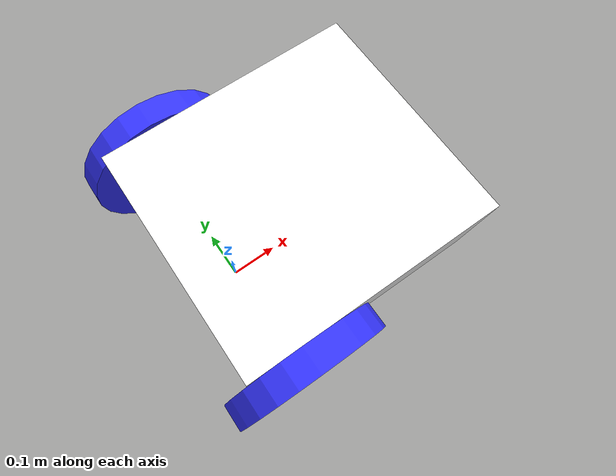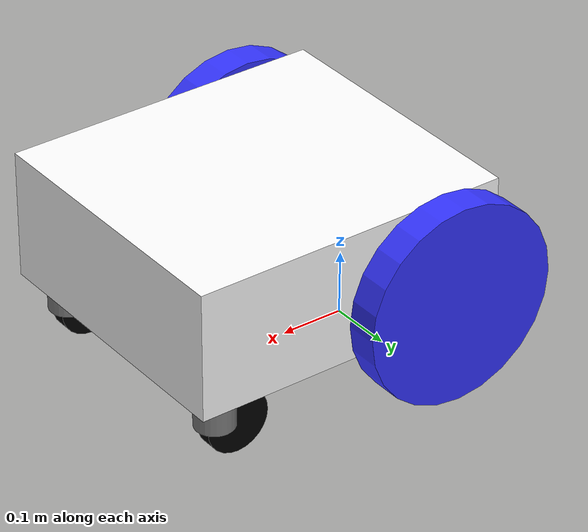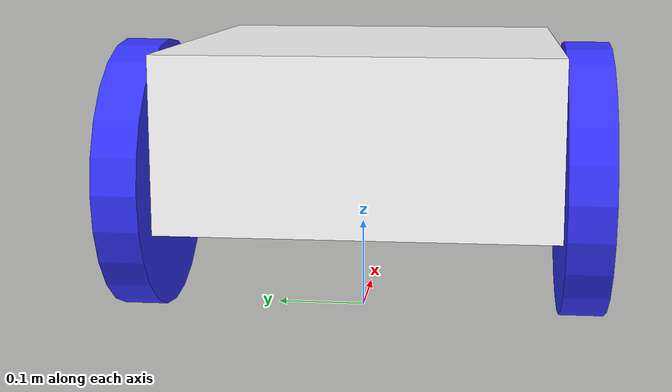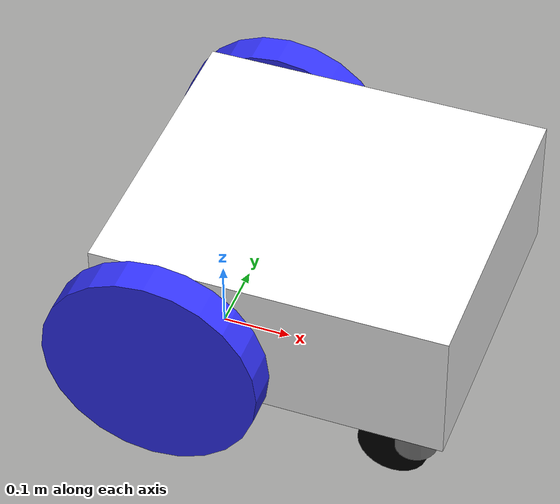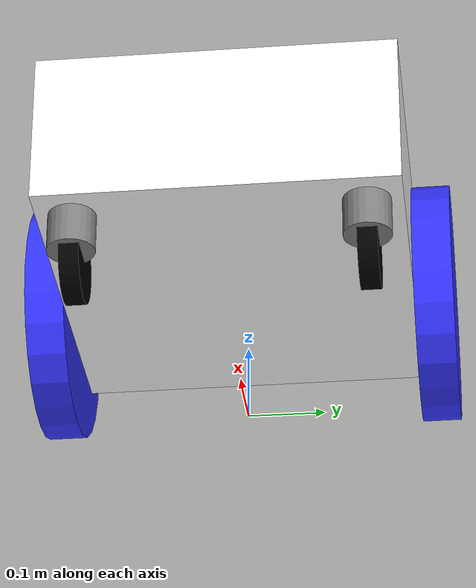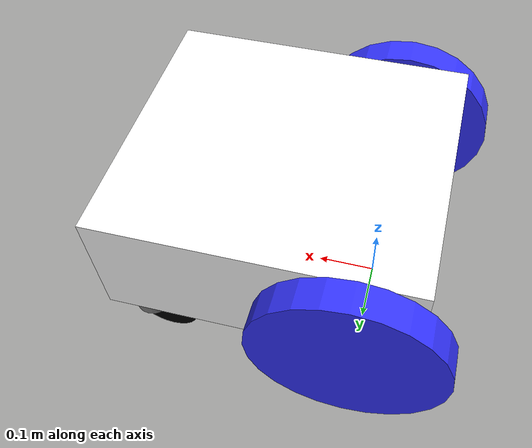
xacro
<?xml version="1.0"?>
<robot xmlns:xacro="http://www.ros.org/wiki/xacro">

    <xacro:include filename="inertial_macros.xacro"/>

    <!-- COLOR DEFINITIONS -->
    <material name="white">
        <color rgba="1 1 1 1" />
    </material>

    <material name="orange">
        <color rgba="1 0.3 0.1 1"/>
    </material>

    <material name="blue">
        <color rgba="0.2 0.2 1 1"/>
    </material>

    <material name="black">
        <color rgba="0 0 0 1"/>
    </material>

    <material name="grey">
        <color rgba="0.5 0.5 0.5 1"/>
    </material>

    <!-- BASE LINK (Tam truc 2 banh chu dong tren mat dat) -->
    <link name="base_link">
    </link>

    <!-- BASE FOOTPRINT -->
    <joint name="base_footprint_joint" type="fixed">
        <parent link="base_link"/>
        <child link="base_footprint"/>
        <origin xyz="0 0 0" rpy="0 0 0"/>
    </joint>

    <link name="base_footprint">
    </link>

    <!-- CHASSIS LINK (Gam cach dat 0.1m, Than xe Cao 0.2m -> Tam o Z = 0.2m) -->
    <joint name="chassis_joint" type="fixed">
        <parent link="base_link"/>
        <child link="chassis"/>
        <origin xyz="-0.1 0 0"/>
    </joint>

    <link name="chassis">
        <visual>
            <origin xyz="0.25 0 0.2"/>
            <geometry>
                <box size="0.5 0.45 0.2"/>
            </geometry>
            <material name="white"/>
        </visual>
        <collision>
            <origin xyz="0.25 0 0.2"/>
            <geometry>
                <box size="0.5 0.45 0.2"/>
            </geometry>
        </collision>
        <xacro:inertial_box mass="10.0" x="0.5" y="0.45" z="0.2">
            <origin xyz="0.25 0 0.2" rpy="0 0 0"/>
        </xacro:inertial_box>
    </link>

    <gazebo reference="chassis">
        <material>Gazebo/White</material>
    </gazebo>

    <!-- LEFT WHEEL LINK (Ban kinh 0.155m, Do day 0.05m) -->
    <joint name="left_wheel_joint" type="continuous">
        <parent link="base_link"/>
        <child link="left_wheel"/>
        <origin xyz="0 0.25 0.155" rpy="-${pi/2} 0 0" />
        <axis xyz="0 0 1"/>
    </joint>

    <link name="left_wheel">
        <visual>
            <geometry>
                <cylinder radius="0.155" length="0.05"/>
            </geometry>
            <material name="blue"/>
        </visual>
        <collision>
            <geometry>
                <cylinder radius="0.155" length="0.05"/>
            </geometry>
        </collision>
        <xacro:inertial_cylinder mass="1.5" length="0.05" radius="0.155">
            <origin xyz="0 0 0" rpy="0 0 0"/>
        </xacro:inertial_cylinder>
    </link>

    <gazebo reference="left_wheel">
        <material>Gazebo/Blue</material>
    </gazebo>

    <!-- RIGHT WHEEL LINK (Ban kinh 0.155m, Do day 0.05m) -->
    <joint name="right_wheel_joint" type="continuous">
        <parent link="base_link"/>
        <child link="right_wheel"/>
        <origin xyz="0 -0.25 0.155" rpy="${pi/2} 0 0" />
        <axis xyz="0 0 -1"/>
    </joint>

    <link name="right_wheel">
        <visual>
            <geometry>
                <cylinder radius="0.155" length="0.05"/>
            </geometry>
            <material name="blue"/>
        </visual>
        <collision>
            <geometry>
                <cylinder radius="0.155" length="0.05"/>
            </geometry>
        </collision>
        <xacro:inertial_cylinder mass="1.5" length="0.05" radius="0.155">
            <origin xyz="0 0 0" rpy="0 0 0"/>
        </xacro:inertial_cylinder>
    </link>

    <gazebo reference="right_wheel">
        <material>Gazebo/Blue</material>
    </gazebo>

    <!-- ==================== FRONT LEFT SWIVEL CASTER ==================== -->
    <!-- Khop xoay co banh quanh truc Z -->
    <joint name="fl_caster_swivel_joint" type="fixed">
        <parent link="chassis"/>
        <child link="fl_caster_swivel"/>
        <origin xyz="0.45 0.18 0.1" rpy="0 0 0"/>
        <axis xyz="0 0 1"/>
    </joint>

    <link name="fl_caster_swivel">
        <visual>
            <origin xyz="0 0 -0.025" rpy="0 0 0"/>
            <geometry>
                <cylinder radius="0.03" length="0.05"/>
            </geometry>
            <material name="grey"/>
        </visual>
        <collision>
            <origin xyz="0 0 -0.025" rpy="0 0 0"/>
            <geometry>
                <cylinder radius="0.03" length="0.05"/>
            </geometry>
        </collision>
        <xacro:inertial_cylinder mass="0.2" length="0.05" radius="0.03">
            <origin xyz="0 0 -0.025" rpy="0 0 0"/>
        </xacro:inertial_cylinder>
    </link>

    <!-- Khop quay banh xe lan quanh truc Y -->
    <joint name="fl_caster_wheel_joint" type="fixed">
        <parent link="fl_caster_swivel"/>
        <child link="fl_caster_wheel"/>
        <origin xyz="-0.03 0 -0.05" rpy="-${pi/2} 0 0"/>
        <axis xyz="0 0 1"/>
    </joint>

    <link name="fl_caster_wheel">
        <visual>
            <origin xyz="0 0 0" rpy="0 0 0"/>
            <geometry>
                <cylinder radius="0.05" length="0.025"/>
            </geometry>
            <material name="black"/>
        </visual>
        <collision>
            <origin xyz="0 0 0" rpy="0 0 0"/>
            <geometry>
                <cylinder radius="0.05" length="0.025"/>
            </geometry>
        </collision>
        <xacro:inertial_cylinder mass="0.3" length="0.025" radius="0.05">
            <origin xyz="0 0 0" rpy="0 0 0"/>
        </xacro:inertial_cylinder>
    </link>

    <gazebo reference="fl_caster_swivel">
        <material>Gazebo/Grey</material>
    </gazebo>
    <gazebo reference="fl_caster_wheel">
        <material>Gazebo/Black</material>
        <mu1 value="0.1"/>
        <mu2 value="0.1"/>
    </gazebo>

    <!-- ==================== FRONT RIGHT SWIVEL CASTER ==================== -->
    <!-- Khop xoay co banh quanh truc Z -->
    <joint name="fr_caster_swivel_joint" type="fixed">
        <parent link="chassis"/>
        <child link="fr_caster_swivel"/>
        <origin xyz="0.45 -0.18 0.1" rpy="0 0 0"/>
        <axis xyz="0 0 1"/>
    </joint>

    <link name="fr_caster_swivel">
        <visual>
            <origin xyz="0 0 -0.025" rpy="0 0 0"/>
            <geometry>
                <cylinder radius="0.03" length="0.05"/>
            </geometry>
            <material name="grey"/>
        </visual>
        <collision>
            <origin xyz="0 0 -0.025" rpy="0 0 0"/>
            <geometry>
                <cylinder radius="0.03" length="0.05"/>
            </geometry>
        </collision>
        <xacro:inertial_cylinder mass="0.2" length="0.05" radius="0.03">
            <origin xyz="0 0 -0.025" rpy="0 0 0"/>
        </xacro:inertial_cylinder>
    </link>

    <!-- Khop quay banh xe lan quanh truc Y -->
    <joint name="fr_caster_wheel_joint" type="fixed">
        <parent link="fr_caster_swivel"/>
        <child link="fr_caster_wheel"/>
        <origin xyz="-0.03 0 -0.05" rpy="-${pi/2} 0 0"/>
        <axis xyz="0 0 1"/>
    </joint>

    <link name="fr_caster_wheel">
        <visual>
            <origin xyz="0 0 0" rpy="0 0 0"/>
            <geometry>
                <cylinder radius="0.05" length="0.025"/>
            </geometry>
            <material name="black"/>
        </visual>
        <collision>
            <origin xyz="0 0 0" rpy="0 0 0"/>
            <geometry>
                <cylinder radius="0.05" length="0.025"/>
            </geometry>
        </collision>
        <xacro:inertial_cylinder mass="0.3" length="0.025" radius="0.05">
            <origin xyz="0 0 0" rpy="0 0 0"/>
        </xacro:inertial_cylinder>
    </link>

    <gazebo reference="fr_caster_swivel">
        <material>Gazebo/Grey</material>
    </gazebo>
    <gazebo reference="fr_caster_wheel">
        <material>Gazebo/Black</material>
        <mu1 value="0.1"/>
        <mu2 value="0.1"/>
    </gazebo>

</robot>
